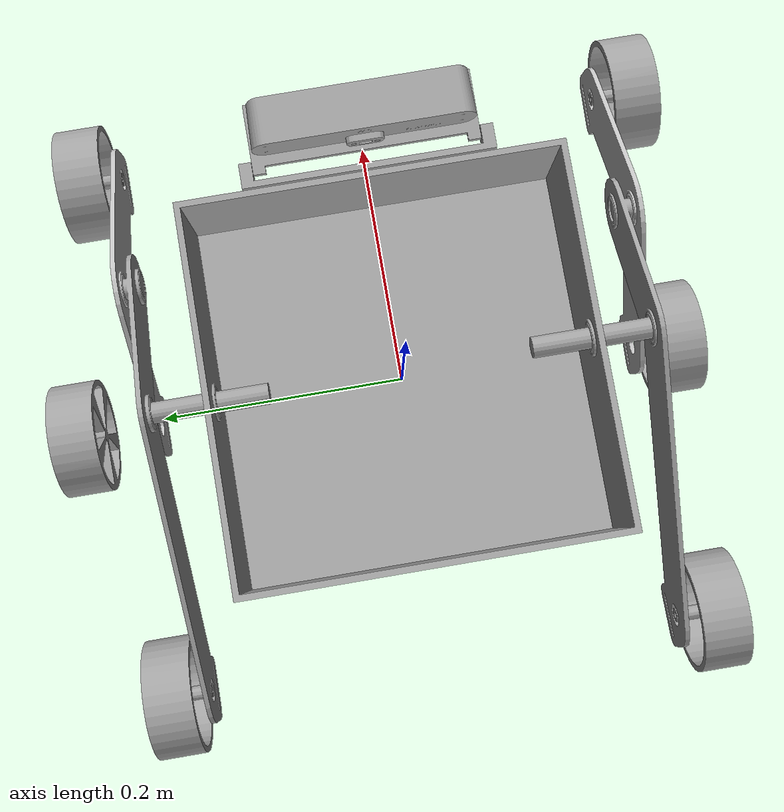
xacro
<?xml version="1.0" encoding="utf-8"?>
<robot name="igv_assembly" xmlns:xacro="http://www.ros.org/wiki/xacro">

  <link name="base_link">
    <inertial>
      <origin xyz="-5.55111512312578E-16 4.44089209850063E-16 0.0131058382964258" rpy="0 0 0" />
      <mass value="1.50765036481311" />
      <inertia ixx="0.0172819216111337" ixy="-4.34830427033138E-18" ixz="-1.39771001490249E-18" iyy="0.0174462077143803" iyz="-5.3897948963004E-06" izz="0.0322556766841891" />
    </inertial>
    <visual>
      <origin xyz="0 0 0" rpy="0 0 0" />
      <geometry>
        <mesh filename="package://igv_assembly/meshes/base_link.STL" />
      </geometry>
      <material name="">
        <color rgba="0.627450980392157 0.627450980392157 0.627450980392157 1" />
      </material>
    </visual>
    <collision>
      <origin xyz="0 0 0" rpy="0 0 0" />
      <geometry>
        <mesh filename="package://igv_assembly/meshes/base_link.STL" />
      </geometry>
    </collision>
  </link>

  <link name="RockerL">
    <inertial>
      <origin xyz="-0.0444283900462424 -0.00756705252802037 -0.0391939612078949" rpy="0 0 0" />
      <mass value="0.118438130191668" />
      <inertia ixx="0.000155017015084251" ixy="-1.48646750943822E-21" ixz="-0.000283635186660913" iyy="0.00115834975412409" iyz="3.29563792754343E-22" izz="0.0010417268635807" />
    </inertial>
    <visual>
      <origin xyz="0 0 0" rpy="0 0 0" />
      <geometry>
        <mesh filename="package://igv_assembly/meshes/RockerL.STL" />
      </geometry>
      <material name="">
        <color rgba="0.627450980392157 0.627450980392157 0.627450980392157 1" />
      </material>
    </visual>
    <collision>
      <origin xyz="0 0 0" rpy="0 0 0" />
      <geometry>
        <mesh filename="package://igv_assembly/meshes/RockerL.STL" />
      </geometry>
    </collision>
  </link>

  <joint name="LeftRocker" type="fixed">
    <origin xyz="0 0.203122560056477 0.0550000000000017" rpy="0 0 0" />
    <parent link="base_link" />
    <child link="RockerL" />
    <axis xyz="0 1 0" />
  </joint>

  <link name="WheelL3">
    <inertial>
      <origin xyz="0 -0.0165713300799556 2.22044604925031E-16" rpy="0 0 0" />
      <mass value="0.095683487480657" />
      <inertia ixx="9.61942691845856E-05" ixy="-2.67115443245389E-20" ixz="4.67357046092461E-20" iyy="0.000167342984972362" iyz="2.38694734300935E-20" izz="9.61942691845857E-05" />
    </inertial>
    <visual>
      <origin xyz="0 0 0" rpy="0 0 0" />
      <geometry>
        <mesh filename="package://igv_assembly/meshes/WheelL3.STL" />
      </geometry>
      <material name="">
        <color rgba="0.627450980392157 0.627450980392157 0.627450980392157 1" />
      </material>
    </visual>
    <collision>
      <origin xyz="0 0 0" rpy="1.57079632679 0 0" />
      <geometry>
        <sphere radius="0.05" />
      </geometry>
    </collision>
  </link>

  <joint name="WL3" type="continuous">
    <origin xyz="-0.229272035427498 0.0495 -0.111621385813536" rpy="0 0 0" />
    <parent link="RockerL" />
    <child link="WheelL3" />
    <axis xyz="0 1 0" />
  </joint>

  <link name="BogieL">
    <inertial>
      <origin xyz="0.00360601465125077 -0.00199999999999989 -0.0510312150797347" rpy="0 0 0" />
      <mass value="0.0725855377820986" />
      <inertia ixx="8.05328649275476E-05" ixy="-1.61236687743738E-21" ixz="-2.47858215964137E-05" iyy="0.000509872951246973" iyz="1.43622722355043E-21" izz="0.000429542783513456" />
    </inertial>
    <visual>
      <origin xyz="0 0 0" rpy="0 0 0" />
      <geometry>
        <mesh filename="package://igv_assembly/meshes/BogieL.STL" />
      </geometry>
      <material name="">
        <color rgba="0.752941176470588 0.752941176470588 0.752941176470588 1" />
      </material>
    </visual>
    <collision>
      <origin xyz="0 0 0" rpy="0 0 0" />
      <geometry>
        <mesh filename="package://igv_assembly/meshes/BogieL.STL" />
      </geometry>
    </collision>
  </link>

  <joint name="LeftBogie" type="revolute">
    <origin xyz="0.111132840749356 0.0165000000000001 -0.0391246943371841" rpy="0 0 0" />
    <parent link="RockerL" />
    <child link="BogieL" />
    <axis xyz="0 1 0" />
    <limit lower="-0.2618" upper="0.2618" effort="100" velocity="1" />
    <dynamics damping="1.0" friction="0.1"/>
  </joint>

  <link name="WheelL2">
    <inertial>
      <origin xyz="0 -0.0165713300799556 0" rpy="0 0 0" />
      <mass value="0.095683487480657" />
      <inertia ixx="9.61942691845856E-05" ixy="-3.36416595964494E-20" ixz="4.94771621050058E-20" iyy="0.000167342984972362" iyz="3.33241050522677E-20" izz="9.61942691845857E-05" />
    </inertial>
    <visual>
      <origin xyz="0 0 0" rpy="0 0 0" />
      <geometry>
        <mesh filename="package://igv_assembly/meshes/WheelL2.STL" />
      </geometry>
      <material name="">
        <color rgba="0.627450980392157 0.627450980392157 0.627450980392157 1" />
      </material>
    </visual>
    <collision>
      <origin xyz="0 0 0" rpy="1.57079632679 0 0" />
      <geometry>
        <sphere radius="0.05" />
      </geometry>
    </collision>
  </link>

  <joint name="WL2" type="continuous">
    <origin xyz="-0.106228768769022 0.046 -0.0927183837532437" rpy="0 0 0" />
    <parent link="BogieL" />
    <child link="WheelL2" />
    <axis xyz="0 1 0" />
  </joint>

  <link name="WheelL1">
    <inertial>
      <origin xyz="0 -0.0165713300799556 0" rpy="0 0 0" />
      <mass value="0.095683487480657" />
      <inertia ixx="9.61942691845857E-05" ixy="-1.84881341438237E-20" ixz="4.73560900686608E-20" iyy="0.000167342984972362" iyz="2.65291537628972E-20" izz="9.61942691845858E-05" />
    </inertial>
    <visual>
      <origin xyz="0 0 0" rpy="0 0 0" />
      <geometry>
        <mesh filename="package://igv_assembly/meshes/WheelL1.STL" />
      </geometry>
      <material name="">
        <color rgba="0.627450980392157 0.627450980392157 0.627450980392157 1" />
      </material>
    </visual>
    <collision>
      <origin xyz="0 0 0" rpy="1.57079632679 0 0" />
      <geometry>
        <sphere radius="0.05" />
      </geometry>
    </collision>
  </link>

  <joint name="WL1" type="continuous">
    <origin xyz="0.118211585773428 0.046 -0.0768587730121344" rpy="0 0 0" />
    <parent link="BogieL" />
    <child link="WheelL1" />
    <axis xyz="0 1 0" />
  </joint>

  <link name="RockerR">
    <inertial>
      <origin xyz="-0.0458474111089989 0.00875620819604439 -0.0427777170935231" rpy="0 0 0" />
      <mass value="0.120278949244856" />
      <inertia ixx="0.000159183946373948" ixy="6.14879409715585E-22" ixz="-0.000276551948895894" iyy="0.00119888716107189" iyz="-6.87470951019029E-22" izz="0.0010781022480896" />
    </inertial>
    <visual>
      <origin xyz="0 0 0" rpy="0 0 0" />
      <geometry>
        <mesh filename="package://igv_assembly/meshes/RockerR.STL" />
      </geometry>
      <material name="">
        <color rgba="0.627450980392157 0.627450980392157 0.627450980392157 1" />
      </material>
    </visual>
    <collision>
      <origin xyz="0 0 0" rpy="0 0 0" />
      <geometry>
        <mesh filename="package://igv_assembly/meshes/RockerR.STL" />
      </geometry>
    </collision>
  </link>

  <joint name="RightRocker" type="fixed">
    <origin xyz="0 -0.200038955864052 0.0649999999999993" rpy="0 0 0" />
    <parent link="base_link" />
    <child link="RockerR" />
    <axis xyz="0 1 0" />
  </joint>

  <link name="WheelR3">
    <inertial>
      <origin xyz="0 0.0165713300799555 0" rpy="0 0 0" />
      <mass value="0.095683487480657" />
      <inertia ixx="9.61942691845858E-05" ixy="2.29863529225909E-20" ixz="5.32512598144256E-21" iyy="0.000167342984972362" iyz="-6.37858672378045E-21" izz="9.61942691845856E-05" />
    </inertial>
    <visual>
      <origin xyz="0 0 0" rpy="0 0 0" />
      <geometry>
        <mesh filename="package://igv_assembly/meshes/WheelR3.STL" />
      </geometry>
      <material name="">
        <color rgba="0.627450980392157 0.627450980392157 0.627450980392157 1" />
      </material>
    </visual>
    <collision>
      <origin xyz="0 0 0" rpy="1.57079632679 0 0" />
      <geometry>
        <sphere radius="0.05" />
      </geometry>
    </collision>
  </link>

  <joint name="WR3" type="continuous">
    <origin xyz="-0.232712347234891 -0.048 -0.115628558083324" rpy="0 0 0" />
    <parent link="RockerR" />
    <child link="WheelR3" />
    <axis xyz="0 1 0" />
  </joint>

  <link name="BogieR">
    <inertial>
      <origin xyz="0.00637209280557116 -0.0180000000000005 -0.0507600698133686" rpy="0 0 0" />
      <mass value="0.0725855377820988" />
      <inertia ixx="8.42503783618712E-05" ixy="1.23375800505978E-21" ixz="-4.35656528371853E-05" iyy="0.000509872951246974" iyz="-3.66416361468105E-22" izz="0.000425825270079133" />
    </inertial>
    <visual>
      <origin xyz="0 0 0" rpy="0 0 0" />
      <geometry>
        <mesh filename="package://igv_assembly/meshes/BogieR.STL" />
      </geometry>
      <material name="">
        <color rgba="0.752941176470588 0.752941176470588 0.752941176470588 1" />
      </material>
    </visual>
    <collision>
      <origin xyz="0 0 0" rpy="0 0 0" />
      <geometry>
        <mesh filename="package://igv_assembly/meshes/BogieR.STL" />
      </geometry>
    </collision>
  </link>

  <joint name="RightBogie" type="revolute">
    <origin xyz="0.10945532574041 0.00200000000000045 -0.0519690452775528" rpy="0 0 0" />
    <parent link="RockerR" />
    <child link="BogieR" />
    <axis xyz="0 1 0" />
    <limit lower="-0.2618" upper="0.2618" effort="100" velocity="1" />
    <dynamics damping="1.0" friction="0.1"/>
  </joint>

  <link name="WheelR2">
    <inertial>
      <origin xyz="0 0.0165713300799557 0" rpy="0 0 0" />
      <mass value="0.0956834874806571" />
      <inertia ixx="9.61942691845856E-05" ixy="-1.95534318309687E-20" ixz="5.265502065105E-20" iyy="0.000167342984972362" iyz="-9.61396990383304E-21" izz="9.61942691845857E-05" />
    </inertial>
    <visual>
      <origin xyz="0 0 0" rpy="0 0 0" />
      <geometry>
        <mesh filename="package://igv_assembly/meshes/WheelR2.STL" />
      </geometry>
      <material name="">
        <color rgba="0.627450980392157 0.627450980392157 0.627450980392157 1" />
      </material>
    </visual>
    <collision>
      <origin xyz="0 0 0" rpy="1.57079632679 0 0" />
      <geometry>
        <sphere radius="0.05" />
      </geometry>
    </collision>
  </link>

  <joint name="WR2" type="continuous">
    <origin xyz="-0.101036656375721 -0.0700000000000005 -0.0983506180377884" rpy="0 0 0" />
    <parent link="BogieR" />
    <child link="WheelR2" />
    <axis xyz="0 1 0" />
  </joint>

  <link name="WheelR1">
    <inertial>
      <origin xyz="-5.55111512312578E-17 0.0165713300799555 -2.22044604925031E-16" rpy="0 0 0" />
      <mass value="0.0956834874806569" />
      <inertia ixx="9.61942691845857E-05" ixy="-2.78103652047748E-21" ixz="-2.06303980183694E-20" iyy="0.000167342984972362" iyz="-9.72240209198185E-21" izz="9.61942691845856E-05" />
    </inertial>
    <visual>
      <origin xyz="0 0 0" rpy="0 0 0" />
      <geometry>
        <mesh filename="package://igv_assembly/meshes/WheelR1.STL" />
      </geometry>
      <material name="">
        <color rgba="0.627450980392157 0.627450980392157 0.627450980392157 1" />
      </material>
    </visual>
    <collision>
      <origin xyz="0 0 0" rpy="1.57079632679 0 0" />
      <geometry>
        <sphere radius="0.05" />
      </geometry>
    </collision>
  </link>

  <joint name="WR1" type="continuous">
    <origin xyz="0.122211174343328 -0.0660000000000005 -0.0703255207277187" rpy="0 0 0" />
    <parent link="BogieR" />
    <child link="WheelR1" />
    <axis xyz="0 1 0" />
  </joint>

  <link name="DepthCamBase">
    <inertial>
      <origin xyz="-0.0103645544560199 -2.22044604925031E-16 -0.00655423669256106" rpy="0 0 0" />
      <mass value="0.0343289402800121" />
      <inertia ixx="0.000141651815846094" ixy="4.74805417236241E-21" ixz="-2.81915492719261E-07" iyy="3.06683343190886E-06" iyz="3.58836565598776E-21" izz="0.0001396245386447" />
    </inertial>
    <visual>
      <origin xyz="0 0 0" rpy="0 0 0" />
      <geometry>
        <mesh filename="package://igv_assembly/meshes/DepthCamBase.STL" />
      </geometry>
      <material name="">
        <color rgba="0.627450980392157 0.627450980392157 0.627450980392157 1" />
      </material>
    </visual>
    <collision>
      <origin xyz="0 0 0" rpy="0 0 0" />
      <geometry>
        <mesh filename="package://igv_assembly/meshes/DepthCamBase.STL" />
      </geometry>
    </collision>
  </link>

  <joint name="DC_Base" type="fixed">
    <origin xyz="0.169117512201439 0 0.0874999999999999" rpy="0 0 0" />
    <parent link="base_link" />
    <child link="DepthCamBase" />
    <axis xyz="0 0 0" />
  </joint>

  <link name="DepthCam">
    <inertial>
      <origin xyz="0.0280082890849347 7.09919781405333E-07 0.0152011064576949" rpy="0 0 0" />
      <mass value="0.01" />
      <inertia ixx="0.0001" ixy="0.0" ixz="0.0" iyy="0.0001" iyz="0.0" izz="0.0001" />
    </inertial>
    <visual>
      <origin xyz="0 0 0" rpy="0 0 0" />
      <geometry>
        <mesh filename="package://igv_assembly/meshes/DepthCam.STL" />
      </geometry>
      <material name="">
        <color rgba="0.627450980392157 0.627450980392157 0.627450980392157 1" />
      </material>
    </visual>
    <collision>
      <origin xyz="0 0 0" rpy="0 0 0" />
      <geometry>
        <mesh filename="package://igv_assembly/meshes/DepthCam.STL" />
      </geometry>
    </collision>
  </link>

  <joint name="DC" type="fixed">
    <origin xyz="0 0 0" rpy="0 0 0" />
    <parent link="DepthCamBase" />
    <child link="DepthCam" />
    <axis xyz="0 1 0" />
  </joint>

  <link name="DepthCamVirtual"/>
  <joint name="depth_cam_virtual_joint" type="fixed">
    <origin xyz="0.05 0 0" rpy="0 0 0"/>
    <parent link="DepthCam"/>
    <child link="DepthCamVirtual"/>
  </joint>

  <link name="DepthCamOptical"/>
  <joint name="optical_joint" type="fixed">
    <origin xyz="0 0 0" rpy="-1.5708 0 -1.5708"/>
    <parent link="DepthCamVirtual"/>
    <child link="DepthCamOptical"/>
  </joint>

  <!-- Gazebo Simulation System Plugins -->
  <gazebo>
    <plugin filename="gz-sim-joint-state-publisher-system" name="gz::sim::systems::JointStatePublisher">
      <topic>joint_states</topic>
    </plugin>
    <plugin filename="gz_ros2_control-system" name="gz_ros2_control::GazeboSimROS2ControlPlugin">
      <parameters>$(find igv_assembly)/config/controllers.yaml</parameters>
    </plugin>
    <plugin filename="gz-sim-sensors-system" name="gz::sim::systems::Sensors">
      <render_engine>ogre2</render_engine>
    </plugin>
    <plugin filename="gz-sim-imu-system" name="gz::sim::systems::Imu">
    </plugin>
  </gazebo>

  <!-- Sensors -->
  <gazebo reference="DepthCamVirtual">
    <sensor type='rgbd_camera' name="Depth_Camera">
      <always_on>true</always_on>

      <update_rate>15.0</update_rate>
      <topic>depth_camera</topic>
      <camera name="depth_camera">
        <optical_frame_id>DepthCamOptical</optical_frame_id>
        <horizontal_fov>1.777</horizontal_fov>
        <image>
          <width>1280</width>
          <height>720</height>
          <format>R8G8B8</format>
        </image>
        <clip>
          <near>0.1</near>
          <far>10.0</far>
        </clip>
        <lens>
          <intrinsics>
            <fx>520.3729858398438</fx>
            <fy>520.3729858398438</fy>
            <cx>654.4447631835938</cx>
            <cy>365.853271484375</cy>
            <s>0</s>
          </intrinsics>
        </lens>
      </camera>
    </sensor>
  </gazebo>

  <!-- Wheel Surface Properties for Gazebo Sim (Ignition) -->
  <gazebo reference="WheelL3">
      <collision>
    <surface>
      <friction>
        <ode>
          <mu>100.0</mu>
          <mu2>0.2</mu2>
          <fdir1>1 0 0 </fdir1>
        </ode>
      </friction>
      <contact>
        <ode>
          <kp>10000000.0</kp>
          <kd>100.0</kd>
        </ode>
      </contact>
    </surface>
  </collision>
    </gazebo>

  <gazebo reference="WheelL2">
      <collision>
    <surface>
      <friction>
        <ode>
          <mu>1.0</mu>
          <mu2>0.2</mu2>
          <fdir1> 1 0 0 </fdir1>
        </ode>
      </friction>
      <contact>
        <ode>
          <kp>10000000.0</kp>
          <kd>100.0</kd>
        </ode>
      </contact>
    </surface>
  </collision>
    </gazebo>

<gazebo reference="WheelL1">
      <collision>
    <surface>
      <friction>
        <ode>
          <mu>1.0</mu>
          <mu2>0.2</mu2>
          <fdir1>1 0 0 </fdir1>
        </ode>
      </friction>
      <contact>
        <ode>
          <kp>10000000.0</kp>
          <kd>100.0</kd>
        </ode>
      </contact>
    </surface>
  </collision>
    </gazebo>

<gazebo reference="WheelR3">
      <collision>
    <surface>
      <friction>
        <ode>
          <mu>1.0</mu>
          <mu2>0.2</mu2>
          <fdir1>1 0 0 </fdir1>
        </ode>
      </friction>
      <contact>
        <ode>
          <kp>10000000.0</kp>
          <kd>100.0</kd>
        </ode>
      </contact>
    </surface>
  </collision>
    </gazebo>

<gazebo reference="WheelR2">
      <collision>
    <surface>
      <friction>
        <ode>
          <mu>1.0</mu>
          <mu2>0.2</mu2>
          <fdir1> 1 0 0 </fdir1>
        </ode>
      </friction>
      <contact>
        <ode>
          <kp>10000000.0</kp>
          <kd>100.0</kd>
        </ode>
      </contact>
    </surface>
  </collision>
    </gazebo>

<gazebo reference="WheelR1">
      <collision>
    <surface>
      <friction>
        <ode>
          <mu>1.0</mu>
          <mu2>0.2</mu2>
          <fdir1> 1 0 0 </fdir1>
        </ode>
      </friction>
      <contact>
        <ode>
          <kp>10000000.0</kp>
          <kd>100.0</kd>
        </ode>
      </contact>
    </surface>
  </collision>
    </gazebo>

  <!-- ROS 2 Control Interfaces -->
  <ros2_control name="IgnitionSystem" type="system">
    <hardware>
      <plugin>gz_ros2_control/GazeboSimSystem</plugin>
    </hardware>

    <joint name="RightBogie">
      <state_interface name="position"/>
    </joint>
    <joint name="LeftBogie">
      <state_interface name="position"/>
    </joint>

    <joint name="WL1">
      <command_interface name="velocity">
        <param name="min">-10</param>
        <param name="max">10</param>
      </command_interface>
      <state_interface name="position"/>
      <state_interface name="velocity"/>
    </joint>
    <joint name="WL2">
      <state_interface name="position"/>
      <state_interface name="velocity"/>
    </joint>
    <joint name="WL3">
      <command_interface name="velocity">
        <param name="min">-10</param>
        <param name="max">10</param>
      </command_interface>
      <state_interface name="position"/>
      <state_interface name="velocity"/>
    </joint>
    <joint name="WR1">
      <command_interface name="velocity">
        <param name="min">-10</param>
        <param name="max">10</param>
      </command_interface>
      <state_interface name="position"/>
      <state_interface name="velocity"/>
    </joint>
    <joint name="WR2">
      <state_interface name="position"/>
      <state_interface name="velocity"/>
    </joint>
    <joint name="WR3">
      <command_interface name="velocity">
        <param name="min">-10</param>
        <param name="max">10</param>
      </command_interface>
      <state_interface name="position"/>
      <state_interface name="velocity"/>
    </joint>
  </ros2_control>

</robot>
